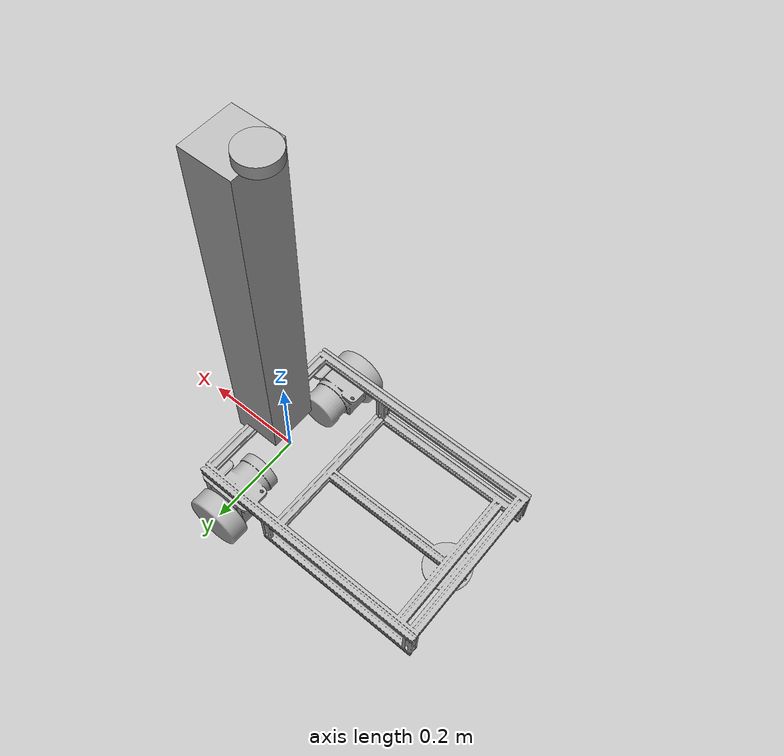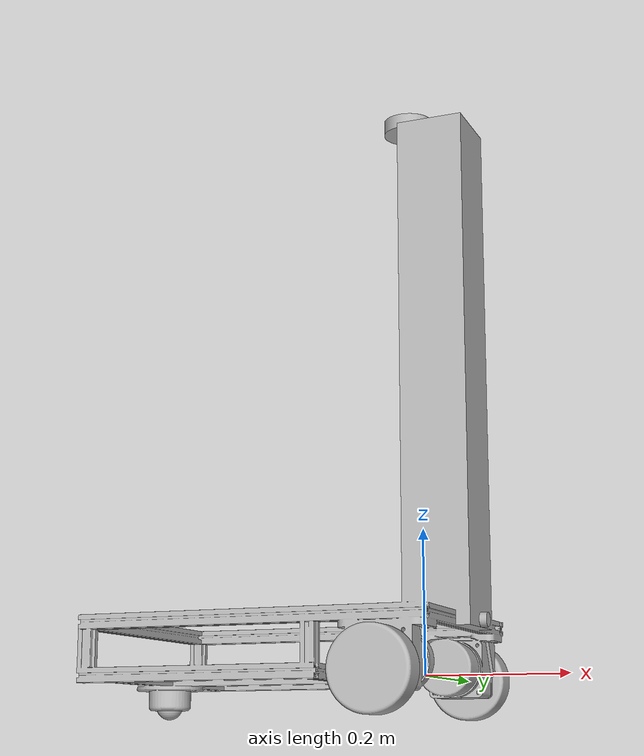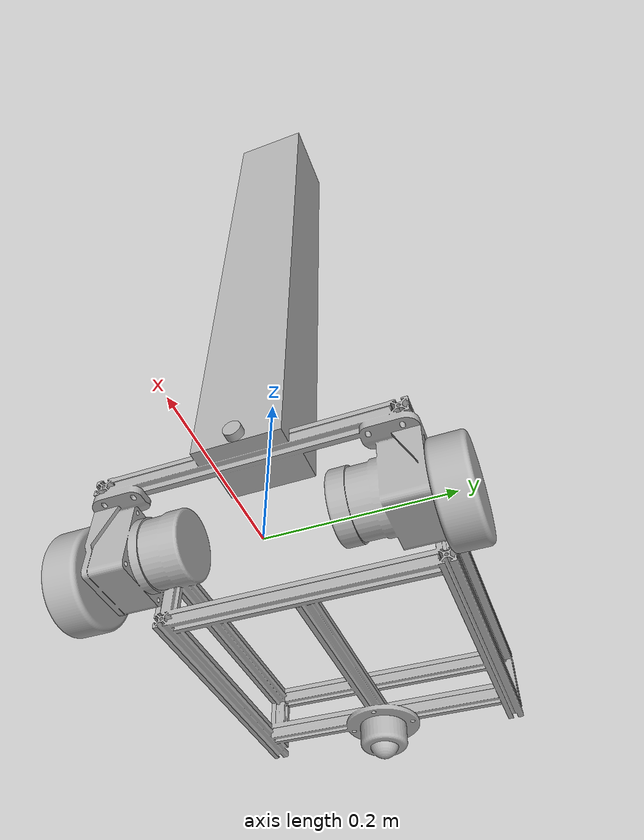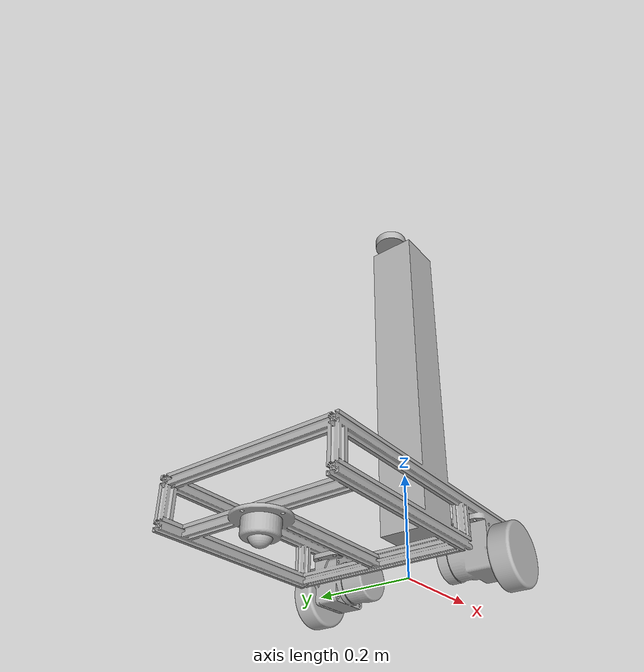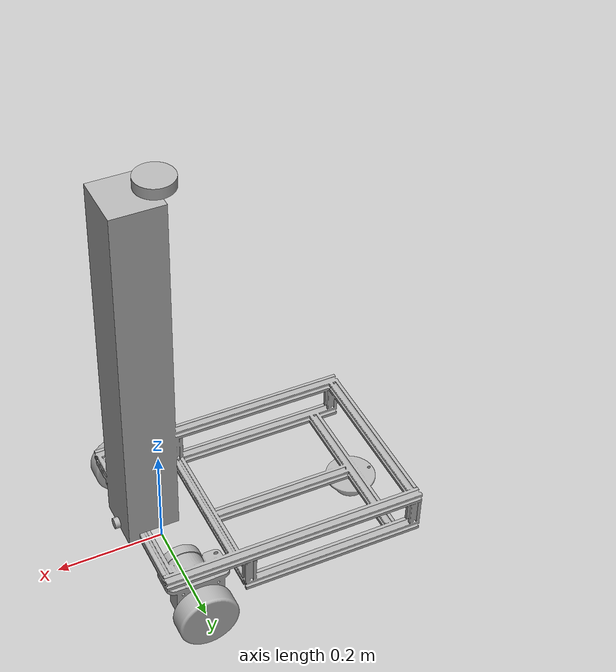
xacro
<?xml version="1.0" ?>
<robot name="cartrasche" xmlns:xacro="http://www.ros.org/wiki/xacro">

<xacro:include filename="$(find cartrasche_description)/urdf/materials.xacro" />
<xacro:include filename="$(find cartrasche_description)/urdf/cartrasche.trans" />
<xacro:include filename="$(find cartrasche_description)/urdf/cartrasche.gazebo" />
<link name="base_link">
  <inertial>
    <origin xyz="0.0026190663618483622 -2.2185715820021788e-16 0.3388319376922865" rpy="0 0 0"/>
    <mass value="67.74618432620866"/>
    <inertia ixx="4.472442" iyy="4.808193" izz="0.950396" ixy="-0.0" iyz="-0.0" ixz="-0.648262"/>
  </inertial>
  <visual>
    <origin xyz="0 0 0" rpy="0 0 0"/>
    <geometry>
      <mesh filename="package://cartrasche_description/meshes/base_link.stl" scale="0.001 0.001 0.001"/>
    </geometry>
    <material name="silver"/>
  </visual>
  <collision>
    <origin xyz="0 0 0" rpy="0 0 0"/>
    <geometry>
      <mesh filename="package://cartrasche_description/meshes/base_link.stl" scale="0.001 0.001 0.001"/>
    </geometry>
  </collision>
</link>

<link name="wheelL_1">
  <inertial>
    <origin xyz="-4.260633313594524e-15 -0.0049622230043442905 2.1743594926500883e-17" rpy="0 0 0"/>
    <mass value="3.060084322980661"/>
    <inertia ixx="0.0028" iyy="0.004797" izz="0.0028" ixy="-0.0" iyz="-0.0" ixz="0.0"/>
  </inertial>
  <visual>
    <origin xyz="-0.0 -0.207 -0.0" rpy="0 0 0"/>
    <geometry>
      <mesh filename="package://cartrasche_description/meshes/wheelL_1.stl" scale="0.001 0.001 0.001"/>
    </geometry>
    <material name="silver"/>
  </visual>
  <collision>
    <origin xyz="-0.0 -0.207 -0.0" rpy="0 0 0"/>
    <geometry>
      <mesh filename="package://cartrasche_description/meshes/wheelL_1.stl" scale="0.001 0.001 0.001"/>
    </geometry>
  </collision>
</link>

<link name="wheelR_1">
  <inertial>
    <origin xyz="4.347900040796894e-15 0.0049622230043442905 1.0258460747536548e-16" rpy="0 0 0"/>
    <mass value="3.060084322980661"/>
    <inertia ixx="0.0028" iyy="0.004797" izz="0.0028" ixy="-0.0" iyz="-0.0" ixz="0.0"/>
  </inertial>
  <visual>
    <origin xyz="-0.0 0.207 -0.0" rpy="0 0 0"/>
    <geometry>
      <mesh filename="package://cartrasche_description/meshes/wheelR_1.stl" scale="0.001 0.001 0.001"/>
    </geometry>
    <material name="silver"/>
  </visual>
  <collision>
    <origin xyz="-0.0 0.207 -0.0" rpy="0 0 0"/>
    <geometry>
      <mesh filename="package://cartrasche_description/meshes/wheelR_1.stl" scale="0.001 0.001 0.001"/>
    </geometry>
  </collision>
</link>

<link name="ridar_1">
  <inertial>
    <origin xyz="0.0 1.7498924471358617e-16 0.009999999999999898" rpy="0 0 0"/>
    <mass value="0.6042068071016568"/>
    <inertia ixx="0.000205" iyy="0.000205" izz="0.00037" ixy="0.0" iyz="-0.0" ixz="-0.0"/>
  </inertial>
  <visual>
    <origin xyz="0.015 -0.0 -0.783" rpy="0 0 0"/>
    <geometry>
      <mesh filename="package://cartrasche_description/meshes/ridar_1.stl" scale="0.001 0.001 0.001"/>
    </geometry>
    <material name="silver"/>
  </visual>
  <collision>
    <origin xyz="0.015 -0.0 -0.783" rpy="0 0 0"/>
    <geometry>
      <mesh filename="package://cartrasche_description/meshes/ridar_1.stl" scale="0.001 0.001 0.001"/>
    </geometry>
  </collision>
</link>

<link name="cam_1">
  <inertial>
    <origin xyz="0.025000000000000078 -0.07999999999999989 0.009999999999999995" rpy="0 0 0"/>
    <mass value="0.024661502330679874"/>
    <inertia ixx="1e-06" iyy="1e-06" izz="1e-06" ixy="0.0" iyz="-0.0" ixz="-0.0"/>
  </inertial>
  <visual>
    <origin xyz="-0.06 -0.08 -0.063" rpy="0 0 0"/>
    <geometry>
      <mesh filename="package://cartrasche_description/meshes/cam_1.stl" scale="0.001 0.001 0.001"/>
    </geometry>
    <material name="silver"/>
  </visual>
  <collision>
    <origin xyz="-0.06 -0.08 -0.063" rpy="0 0 0"/>
    <geometry>
      <mesh filename="package://cartrasche_description/meshes/cam_1.stl" scale="0.001 0.001 0.001"/>
    </geometry>
  </collision>
</link>

<joint name="회전 1" type="continuous">
  <origin xyz="0.0 0.207 0.0" rpy="0 0 0"/>
  <parent link="base_link"/>
  <child link="wheelL_1"/>
  <axis xyz="-0.0 1.0 -0.0"/>
</joint>

<joint name="회전 2" type="continuous">
  <origin xyz="0.0 -0.207 0.0" rpy="0 0 0"/>
  <parent link="base_link"/>
  <child link="wheelR_1"/>
  <axis xyz="-0.0 1.0 -0.0"/>
</joint>

<joint name="회전 3" type="continuous">
  <origin xyz="-0.015 0.0 0.783" rpy="0 0 0"/>
  <parent link="base_link"/>
  <child link="ridar_1"/>
  <axis xyz="-0.0 0.0 1.0"/>
</joint>

<joint name="강체 4" type="fixed">
  <origin xyz="0.06 0.08 0.063" rpy="0 0 0"/>
  <parent link="base_link"/>
  <child link="cam_1"/>
</joint>

</robot>

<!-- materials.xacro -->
<robot name="cartrasche" xmlns:xacro="http://www.ros.org/wiki/xacro" >

<material name="silver">
  <color rgba="0.700 0.700 0.700 1.000"/>
</material>

</robot>

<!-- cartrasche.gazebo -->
<robot name="cartrasche" xmlns:xacro="http://www.ros.org/wiki/xacro" >

<xacro:property name="body_color" value="Gazebo/Silver" />

<gazebo>
  <plugin name="control" filename="libgazebo_ros_control.so"/>
</gazebo>
<gazebo reference="base_link">
  <material>${body_color}</material>
  <mu1>0.2</mu1>
  <mu2>0.2</mu2>
  <selfCollide>true</selfCollide>
  <gravity>true</gravity>
</gazebo>

<gazebo reference="wheelL_1">
  <material>${body_color}</material>
  <mu1>0.2</mu1>
  <mu2>0.2</mu2>
  <selfCollide>true</selfCollide>
</gazebo>

<gazebo reference="wheelR_1">
  <material>${body_color}</material>
  <mu1>0.2</mu1>
  <mu2>0.2</mu2>
  <selfCollide>true</selfCollide>
</gazebo>

<gazebo reference="ridar_1">
  <material>${body_color}</material>
  <mu1>0.2</mu1>
  <mu2>0.2</mu2>
  <selfCollide>true</selfCollide>
</gazebo>

<gazebo reference="cam_1">
  <material>${body_color}</material>
  <mu1>0.2</mu1>
  <mu2>0.2</mu2>
  <selfCollide>true</selfCollide>
</gazebo>

</robot>
